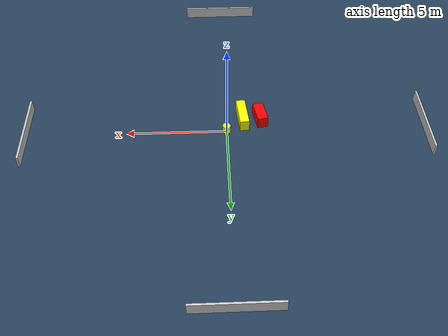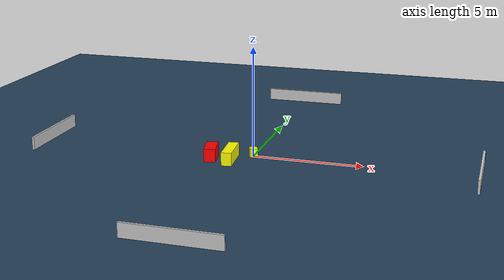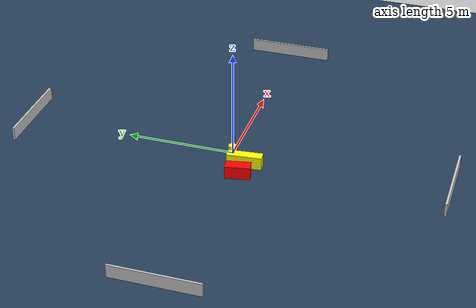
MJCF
<?xml version="1.0" ?>
<mujoco model="generated_environment">
  <option timestep="0.01" integrator="RK4" cone="elliptic"/>
  <default>
    <geom density="1"/>
  </default>
  <asset>
    <texture builtin="gradient" height="3072" name="skybox" rgb1="0.3 0.5 0.7" rgb2="0 0 0" type="skybox" width="512"/>
    <texture builtin="checker" height="300" name="groundplane" rgb1="0.2 0.3 0.4" rgb2="0.1 0.2 0.3" type="2d" width="300"/>
    <material name="groundplane" reflectance="0.2" texrepeat="5 5" texture="groundplane"/>
  </asset>
  <worldbody>
    <light dir="0 0 -1" directional="true" pos="0 0 1.5"/>
    <geom condim="3" friction="0.5 0.005 0.001" material="groundplane" name="floor" pos="0 0 0" size="0 0 0.05" type="plane"/>
    <body name="walls">
      <geom name="wall_1" condim="4" pos="-10.0 0.0 0.3" rgba="0.800000011920929 0.800000011920929 0.800000011920929 1.0" size="0.05 2.0 0.3" type="box"/>
      <geom name="wall_2" condim="4" pos="10.0 0.0 0.3" rgba="0.800000011920929 0.800000011920929 0.800000011920929 1.0" size="0.05 2.0 0.3" type="box"/>
      <geom name="wall_3" condim="4" pos="0.0 -10.0 0.3" rgba="0.800000011920929 0.800000011920929 0.800000011920929 1.0" size="2.0 0.05 0.3" type="box"/>
      <geom name="wall_4" condim="4" pos="0.0 10.0 0.3" rgba="0.800000011920929 0.800000011920929 0.800000011920929 1.0" size="2.0 0.05 0.3" type="box"/>
    </body>
    <body name="robot">
      <joint name="joint_x" type="slide" pos="0 0 0" axis="1 0 0"/>
      <joint name="joint_y" type="slide" pos="0 0 0" axis="0 1 0"/>
      <geom name="robot" type="cylinder" pos="0.0 0.0 0.2" size="0.2 0.2 0.0" mass="5.0" friction="1.0 0.005 0.0001" condim="4" rgba="1.0 1.0 0.0 1.0"/>
    </body>
    <body name="obstacle_1_movable">
      <geom name="obstacle_1_movable" condim="4" pos="-0.8337925950141882 -0.8326322561367898 0.3" euler="0 0 185.34955906370232" friction="0.0 0.005 0.001" rgba="1.0 1.0 0.0 1.0" size="0.23060799706505775 0.7987393412602779 0.3" type="box" mass="0.1"/>
      <joint type="free"/>
    </body>
    <body name="obstacle_2_static">
      <geom name="obstacle_2_static" condim="4" pos="-1.7364437807165112 -0.7903168418247992 0.3" euler="0 0 280.77079121979983" friction="0.0 0.005 0.001" rgba="1.0 0.0 0.0 1.0" size="0.5713649043218338 0.26199597051988455 0.3" type="box"/>
    </body>
  </worldbody>
  <actuator>
    <motor name="actuator_x" joint="joint_x" gear="1" ctrlrange="-1 1"/>
    <motor name="actuator_y" joint="joint_y" gear="1" ctrlrange="-1 1"/>
  </actuator>
</mujoco>
